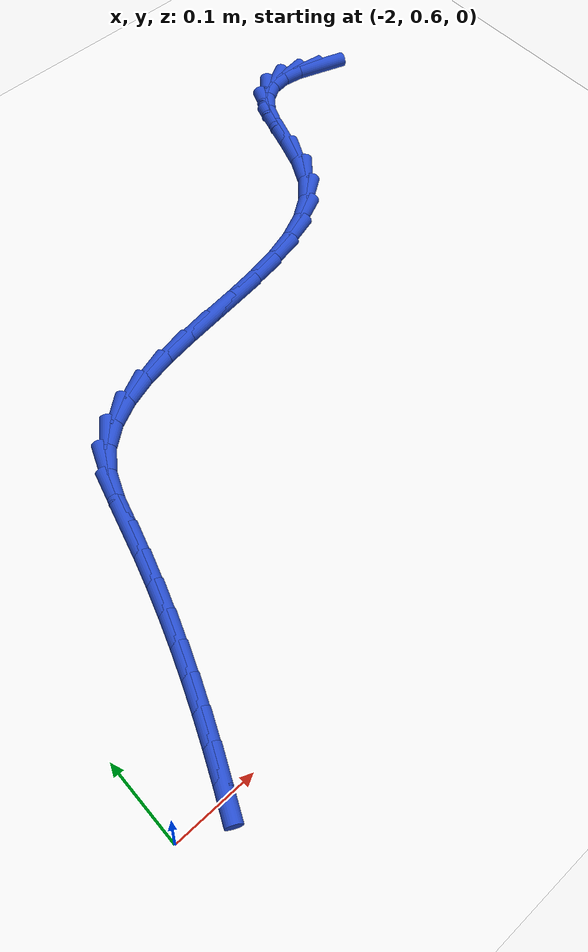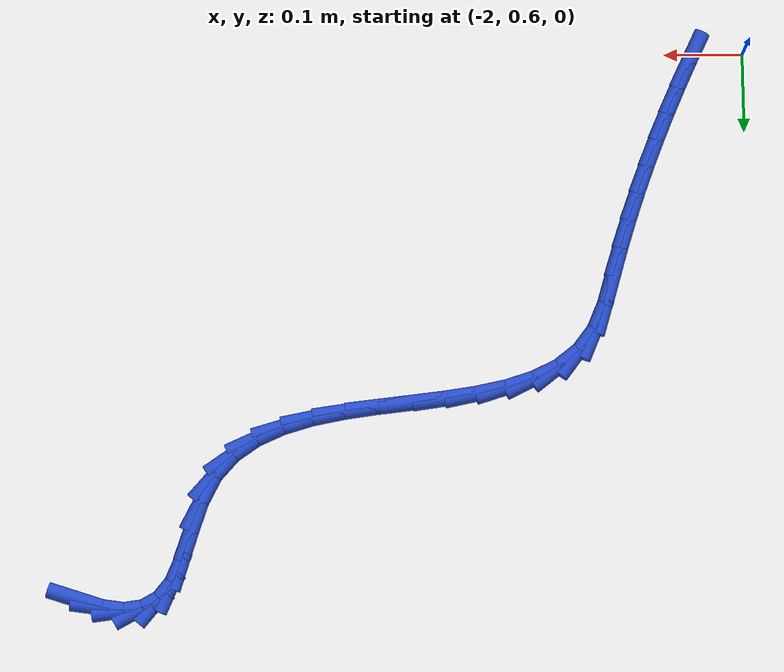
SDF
<sdf version="1.6">
 <world name="default">
  <model name="ground_plane">
   <static>1</static>
   <link name="link">
    <collision name="collision">
     <geometry><plane><normal>0 0 1</normal><size>100 100</size></plane></geometry>
     <surface><friction><ode><mu>100</mu><mu2>50</mu2></ode></friction></surface>
    </collision>
    <visual name="visual">
     <cast_shadows>0</cast_shadows>
     <geometry><plane><normal>0 0 1</normal><size>100 100</size></plane></geometry>
     <material>
      <script><uri>file://media/materials/scripts/gazebo.material</uri><name>Gazebo/WhiteGlow</name></script>
     </material>
    </visual>
   </link>
  </model>
  <model name="line">
   <link name="link_49">
    <pose>-1.1612491413157264 1.280083311337063 0.01 0 1.57 -0.31921775201873503</pose>
    <collision name="collision">
     <geometry><cylinder><radius>0.01</radius><length>0.08</length></cylinder></geometry>
    </collision>
    <visual name="visual">
     <material>
      <script><name>Gazebo/Blue</name><uri>file://media/materials/scripts/gazebo.material</uri></script>
     </material>
     <geometry><cylinder><radius>0.01</radius><length>0.08</length></cylinder></geometry>
    </visual>
   </link>
   <link name="link_50">
    <pose>-1.190501199447192 1.2897517447788676 0.01 0 1.57 -0.14180390406216242</pose>
    <collision name="collision">
     <geometry><cylinder><radius>0.01</radius><length>0.08</length></cylinder></geometry>
    </collision>
    <visual name="visual">
     <material>
      <script><name>Gazebo/Blue</name><uri>file://media/materials/scripts/gazebo.material</uri></script>
     </material>
     <geometry><cylinder><radius>0.01</radius><length>0.08</length></cylinder></geometry>
    </visual>
   </link>
   <link name="link_51">
    <pose>-1.2169454234025103 1.2935269775265434 0.01 0 1.57 0.13005350951575115</pose>
    <collision name="collision">
     <geometry><cylinder><radius>0.01</radius><length>0.08</length></cylinder></geometry>
    </collision>
    <visual name="visual">
     <material>
      <script><name>Gazebo/Blue</name><uri>file://media/materials/scripts/gazebo.material</uri></script>
     </material>
     <geometry><cylinder><radius>0.01</radius><length>0.08</length></cylinder></geometry>
    </visual>
   </link>
   <link name="link_52">
    <pose>-1.2403157248235954 1.290470335080957 0.01 0 1.57 0.49555198521306687</pose>
    <collision name="collision">
     <geometry><cylinder><radius>0.01</radius><length>0.08</length></cylinder></geometry>
    </collision>
    <visual name="visual">
     <material>
      <script><name>Gazebo/Blue</name><uri>file://media/materials/scripts/gazebo.material</uri></script>
     </material>
     <geometry><cylinder><radius>0.01</radius><length>0.08</length></cylinder></geometry>
    </visual>
   </link>
   <link name="link_53">
    <pose>-1.2603460153523587 1.279643142942973 0.01 0 1.57 0.8717284479491614</pose>
    <collision name="collision">
     <geometry><cylinder><radius>0.01</radius><length>0.08</length></cylinder></geometry>
    </collision>
    <visual name="visual">
     <material>
      <script><name>Gazebo/Blue</name><uri>file://media/materials/scripts/gazebo.material</uri></script>
     </material>
     <geometry><cylinder><radius>0.01</radius><length>0.08</length></cylinder></geometry>
    </visual>
   </link>
   <link name="link_54">
    <pose>-1.2767702066307134 1.2601067266134585 0.01 0 1.57 1.1521482262837601</pose>
    <collision name="collision">
     <geometry><cylinder><radius>0.01</radius><length>0.08</length></cylinder></geometry>
    </collision>
    <visual name="visual">
     <material>
      <script><name>Gazebo/Blue</name><uri>file://media/materials/scripts/gazebo.material</uri></script>
     </material>
     <geometry><cylinder><radius>0.01</radius><length>0.08</length></cylinder></geometry>
    </visual>
   </link>
   <link name="link_55">
    <pose>-1.2895647042770406 1.2313519460876943 0.01 0 1.57 1.2603500687234017</pose>
    <collision name="collision">
     <geometry><cylinder><radius>0.01</radius><length>0.08</length></cylinder></geometry>
    </collision>
    <visual name="visual">
     <material>
      <script><name>Gazebo/Blue</name><uri>file://media/materials/scripts/gazebo.material</uri></script>
     </material>
     <geometry><cylinder><radius>0.01</radius><length>0.08</length></cylinder></geometry>
    </visual>
   </link>
   <link name="link_56">
    <pose>-1.300749346286165 1.196489234537456 0.01 0 1.57 1.2340485952930138</pose>
    <collision name="collision">
     <geometry><cylinder><radius>0.01</radius><length>0.08</length></cylinder></geometry>
    </collision>
    <visual name="visual">
     <material>
      <script><name>Gazebo/Blue</name><uri>file://media/materials/scripts/gazebo.material</uri></script>
     </material>
     <geometry><cylinder><radius>0.01</radius><length>0.08</length></cylinder></geometry>
    </visual>
   </link>
   <link name="link_57">
    <pose>-1.313368315069187 1.1604434671563764 0.01 0 1.57 1.0842727911966776</pose>
    <collision name="collision">
     <geometry><cylinder><radius>0.01</radius><length>0.08</length></cylinder></geometry>
    </collision>
    <visual name="visual">
     <material>
      <script><name>Gazebo/Blue</name><uri>file://media/materials/scripts/gazebo.material</uri></script>
     </material>
     <geometry><cylinder><radius>0.01</radius><length>0.08</length></cylinder></geometry>
    </visual>
   </link>
   <link name="link_58">
    <pose>-1.3304590224876394 1.1281316688789473 0.01 0 1.57 0.834133887277974</pose>
    <collision name="collision">
     <geometry><cylinder><radius>0.01</radius><length>0.08</length></cylinder></geometry>
    </collision>
    <visual name="visual">
     <material>
      <script><name>Gazebo/Blue</name><uri>file://media/materials/scripts/gazebo.material</uri></script>
     </material>
     <geometry><cylinder><radius>0.01</radius><length>0.08</length></cylinder></geometry>
    </visual>
   </link>
   <link name="link_59">
    <pose>-1.3537207361879966 1.1024844541929182 0.01 0 1.57 0.5991897227936704</pose>
    <collision name="collision">
     <geometry><cylinder><radius>0.01</radius><length>0.08</length></cylinder></geometry>
    </collision>
    <visual name="visual">
     <material>
      <script><name>Gazebo/Blue</name><uri>file://media/materials/scripts/gazebo.material</uri></script>
     </material>
     <geometry><cylinder><radius>0.01</radius><length>0.08</length></cylinder></geometry>
    </visual>
   </link>
   <link name="link_60">
    <pose>-1.3824491475311054 1.082864444697401 0.01 0 1.57 0.4139201853309544</pose>
    <collision name="collision">
     <geometry><cylinder><radius>0.01</radius><length>0.08</length></cylinder></geometry>
    </collision>
    <visual name="visual">
     <material>
      <script><name>Gazebo/Blue</name><uri>file://media/materials/scripts/gazebo.material</uri></script>
     </material>
     <geometry><cylinder><radius>0.01</radius><length>0.08</length></cylinder></geometry>
    </visual>
   </link>
   <link name="link_61">
    <pose>-1.415689227973836 1.0682620804053544 0.01 0 1.57 0.2803318708007192</pose>
    <collision name="collision">
     <geometry><cylinder><radius>0.01</radius><length>0.08</length></cylinder></geometry>
    </collision>
    <visual name="visual">
     <material>
      <script><name>Gazebo/Blue</name><uri>file://media/materials/scripts/gazebo.material</uri></script>
     </material>
     <geometry><cylinder><radius>0.01</radius><length>0.08</length></cylinder></geometry>
    </visual>
   </link>
   <link name="link_62">
    <pose>-1.452485948973061 1.0576678013297383 0.01 0 1.57 0.19045700513323918</pose>
    <collision name="collision">
     <geometry><cylinder><radius>0.01</radius><length>0.08</length></cylinder></geometry>
    </collision>
    <visual name="visual">
     <material>
      <script><name>Gazebo/Blue</name><uri>file://media/materials/scripts/gazebo.material</uri></script>
     </material>
     <geometry><cylinder><radius>0.01</radius><length>0.08</length></cylinder></geometry>
    </visual>
   </link>
   <link name="link_63">
    <pose>-1.491884281985652 1.0500720474835108 0.01 0 1.57 0.13576102323011224</pose>
    <collision name="collision">
     <geometry><cylinder><radius>0.01</radius><length>0.08</length></cylinder></geometry>
    </collision>
    <visual name="visual">
     <material>
      <script><name>Gazebo/Blue</name><uri>file://media/materials/scripts/gazebo.material</uri></script>
     </material>
     <geometry><cylinder><radius>0.01</radius><length>0.08</length></cylinder></geometry>
    </visual>
   </link>
   <link name="link_64">
    <pose>-1.5329291984684803 1.044465258879632 0.01 0 1.57 0.11042048234627565</pose>
    <collision name="collision">
     <geometry><cylinder><radius>0.01</radius><length>0.08</length></cylinder></geometry>
    </collision>
    <visual name="visual">
     <material>
      <script><name>Gazebo/Blue</name><uri>file://media/materials/scripts/gazebo.material</uri></script>
     </material>
     <geometry><cylinder><radius>0.01</radius><length>0.08</length></cylinder></geometry>
    </visual>
   </link>
   <link name="link_65">
    <pose>-1.5746656698784176 1.0398378755310596 0.01 0 1.57 0.11183432525941048</pose>
    <collision name="collision">
     <geometry><cylinder><radius>0.01</radius><length>0.08</length></cylinder></geometry>
    </collision>
    <visual name="visual">
     <material>
      <script><name>Gazebo/Blue</name><uri>file://media/materials/scripts/gazebo.material</uri></script>
     </material>
     <geometry><cylinder><radius>0.01</radius><length>0.08</length></cylinder></geometry>
    </visual>
   </link>
   <link name="link_66">
    <pose>-1.6161386676723357 1.0351803374507538 0.01 0 1.57 0.14059704245803892</pose>
    <collision name="collision">
     <geometry><cylinder><radius>0.01</radius><length>0.08</length></cylinder></geometry>
    </collision>
    <visual name="visual">
     <material>
      <script><name>Gazebo/Blue</name><uri>file://media/materials/scripts/gazebo.material</uri></script>
     </material>
     <geometry><cylinder><radius>0.01</radius><length>0.08</length></cylinder></geometry>
    </visual>
   </link>
   <link name="link_67">
    <pose>-1.6563931633071056 1.029483084651673 0.01 0 1.57 0.20068430976447896</pose>
    <collision name="collision">
     <geometry><cylinder><radius>0.01</radius><length>0.08</length></cylinder></geometry>
    </collision>
    <visual name="visual">
     <material>
      <script><name>Gazebo/Blue</name><uri>file://media/materials/scripts/gazebo.material</uri></script>
     </material>
     <geometry><cylinder><radius>0.01</radius><length>0.08</length></cylinder></geometry>
    </visual>
   </link>
   <link name="link_68">
    <pose>-1.6944741282395994 1.0217365571467762 0.01 0 1.57 0.29982546258192566</pose>
    <collision name="collision">
     <geometry><cylinder><radius>0.01</radius><length>0.08</length></cylinder></geometry>
    </collision>
    <visual name="visual">
     <material>
      <script><name>Gazebo/Blue</name><uri>file://media/materials/scripts/gazebo.material</uri></script>
     </material>
     <geometry><cylinder><radius>0.01</radius><length>0.08</length></cylinder></geometry>
    </visual>
   </link>
   <link name="link_69">
    <pose>-1.729426533926688 1.0109311949490227 0.01 0 1.57 0.4490123955451565</pose>
    <collision name="collision">
     <geometry><cylinder><radius>0.01</radius><length>0.08</length></cylinder></geometry>
    </collision>
    <visual name="visual">
     <material>
      <script><name>Gazebo/Blue</name><uri>file://media/materials/scripts/gazebo.material</uri></script>
     </material>
     <geometry><cylinder><radius>0.01</radius><length>0.08</length></cylinder></geometry>
    </visual>
   </link>
   <link name="link_70">
    <pose>-1.7602953518252442 0.9960574380713717 0.01 0 1.57 0.657694904254171</pose>
    <collision name="collision">
     <geometry><cylinder><radius>0.01</radius><length>0.08</length></cylinder></geometry>
    </collision>
    <visual name="visual">
     <material>
      <script><name>Gazebo/Blue</name><uri>file://media/materials/scripts/gazebo.material</uri></script>
     </material>
     <geometry><cylinder><radius>0.01</radius><length>0.08</length></cylinder></geometry>
    </visual>
   </link>
   <link name="link_71">
    <pose>-1.786125553392139 0.9761057265267823 0.01 0 1.57 0.9197878578232792</pose>
    <collision name="collision">
     <geometry><cylinder><radius>0.01</radius><length>0.08</length></cylinder></geometry>
    </collision>
    <visual name="visual">
     <material>
      <script><name>Gazebo/Blue</name><uri>file://media/materials/scripts/gazebo.material</uri></script>
     </material>
     <geometry><cylinder><radius>0.01</radius><length>0.08</length></cylinder></geometry>
    </visual>
   </link>
   <link name="link_72">
    <pose>-1.8059621353947113 0.9500665261253635 0.01 0 1.57 1.1695210998663894</pose>
    <collision name="collision">
     <geometry><cylinder><radius>0.01</radius><length>0.08</length></cylinder></geometry>
    </collision>
    <visual name="visual">
     <material>
      <script><name>Gazebo/Blue</name><uri>file://media/materials/scripts/gazebo.material</uri></script>
     </material>
     <geometry><cylinder><radius>0.01</radius><length>0.08</length></cylinder></geometry>
    </visual>
   </link>
   <link name="link_73">
    <pose>-1.819668024144276 0.9177639597984742 0.01 0 1.57 1.2872621960160442</pose>
    <collision name="collision">
     <geometry><cylinder><radius>0.01</radius><length>0.08</length></cylinder></geometry>
    </collision>
    <visual name="visual">
     <material>
      <script><name>Gazebo/Blue</name><uri>file://media/materials/scripts/gazebo.material</uri></script>
     </material>
     <geometry><cylinder><radius>0.01</radius><length>0.08</length></cylinder></geometry>
    </visual>
   </link>
   <link name="link_74">
    <pose>-1.8300750601335252 0.8820481524942884 0.01 0 1.57 1.2924991903023233</pose>
    <collision name="collision">
     <geometry><cylinder><radius>0.01</radius><length>0.08</length></cylinder></geometry>
    </collision>
    <visual name="visual">
     <material>
      <script><name>Gazebo/Blue</name><uri>file://media/materials/scripts/gazebo.material</uri></script>
     </material>
     <geometry><cylinder><radius>0.01</radius><length>0.08</length></cylinder></geometry>
    </visual>
   </link>
   <link name="link_75">
    <pose>-1.840344259426991 0.84610561173369 0.01 0 1.57 1.2680385166494021</pose>
    <collision name="collision">
     <geometry><cylinder><radius>0.01</radius><length>0.08</length></cylinder></geometry>
    </collision>
    <visual name="visual">
     <material>
      <script><name>Gazebo/Blue</name><uri>file://media/materials/scripts/gazebo.material</uri></script>
     </material>
     <geometry><cylinder><radius>0.01</radius><length>0.08</length></cylinder></geometry>
    </visual>
   </link>
   <link name="link_76">
    <pose>-1.8513674132821667 0.8108157704474234 0.01 0 1.57 1.2442187884494504</pose>
    <collision name="collision">
     <geometry><cylinder><radius>0.01</radius><length>0.08</length></cylinder></geometry>
    </collision>
    <visual name="visual">
     <material>
      <script><name>Gazebo/Blue</name><uri>file://media/materials/scripts/gazebo.material</uri></script>
     </material>
     <geometry><cylinder><radius>0.01</radius><length>0.08</length></cylinder></geometry>
    </visual>
   </link>
   <link name="link_77">
    <pose>-1.863117668857513 0.7761240948425848 0.01 0 1.57 1.2212632079221766</pose>
    <collision name="collision">
     <geometry><cylinder><radius>0.01</radius><length>0.08</length></cylinder></geometry>
    </collision>
    <visual name="visual">
     <material>
      <script><name>Gazebo/Blue</name><uri>file://media/materials/scripts/gazebo.material</uri></script>
     </material>
     <geometry><cylinder><radius>0.01</radius><length>0.08</length></cylinder></geometry>
    </visual>
   </link>
   <link name="link_78">
    <pose>-1.8755655760133976 0.7419734105062579 0.01 0 1.57 1.1993004629953616</pose>
    <collision name="collision">
     <geometry><cylinder><radius>0.01</radius><length>0.08</length></cylinder></geometry>
    </collision>
    <visual name="visual">
     <material>
      <script><name>Gazebo/Blue</name><uri>file://media/materials/scripts/gazebo.material</uri></script>
     </material>
     <geometry><cylinder><radius>0.01</radius><length>0.08</length></cylinder></geometry>
    </visual>
   </link>
   <link name="link_79">
    <pose>-1.888681684610185 0.7083065430255263 0.01 0 1.57 1.1784488872686933</pose>
    <collision name="collision">
     <geometry><cylinder><radius>0.01</radius><length>0.08</length></cylinder></geometry>
    </collision>
    <visual name="visual">
     <material>
      <script><name>Gazebo/Blue</name><uri>file://media/materials/scripts/gazebo.material</uri></script>
     </material>
     <geometry><cylinder><radius>0.01</radius><length>0.08</length></cylinder></geometry>
    </visual>
   </link>
   <link name="link_80">
    <pose>-1.902436544508242 0.6750663179874733 0.01 0 1.57 1.158814823958182</pose>
    <collision name="collision">
     <geometry><cylinder><radius>0.01</radius><length>0.08</length></cylinder></geometry>
    </collision>
    <visual name="visual">
     <material>
      <script><name>Gazebo/Blue</name><uri>file://media/materials/scripts/gazebo.material</uri></script>
     </material>
     <geometry><cylinder><radius>0.01</radius><length>0.08</length></cylinder></geometry>
    </visual>
   </link>
   <link name="link_81">
    <pose>-1.9168007055679344 0.6421955609791826 0.01 0 1.57 1.1404914387741663</pose>
    <collision name="collision">
     <geometry><cylinder><radius>0.01</radius><length>0.08</length></cylinder></geometry>
    </collision>
    <visual name="visual">
     <material>
      <script><name>Gazebo/Blue</name><uri>file://media/materials/scripts/gazebo.material</uri></script>
     </material>
     <geometry><cylinder><radius>0.01</radius><length>0.08</length></cylinder></geometry>
    </visual>
   </link>
   <link name="link_82">
    <pose>-1.9317447176496294 0.609637097587738 0.01 0 1.57 1.1235579837236063</pose>
    <collision name="collision">
     <geometry><cylinder><radius>0.01</radius><length>0.08</length></cylinder></geometry>
    </collision>
    <visual name="visual">
     <material>
      <script><name>Gazebo/Blue</name><uri>file://media/materials/scripts/gazebo.material</uri></script>
     </material>
     <geometry><cylinder><radius>0.01</radius><length>0.08</length></cylinder></geometry>
    </visual>
   </link>
  </model>
 </world>
</sdf>
